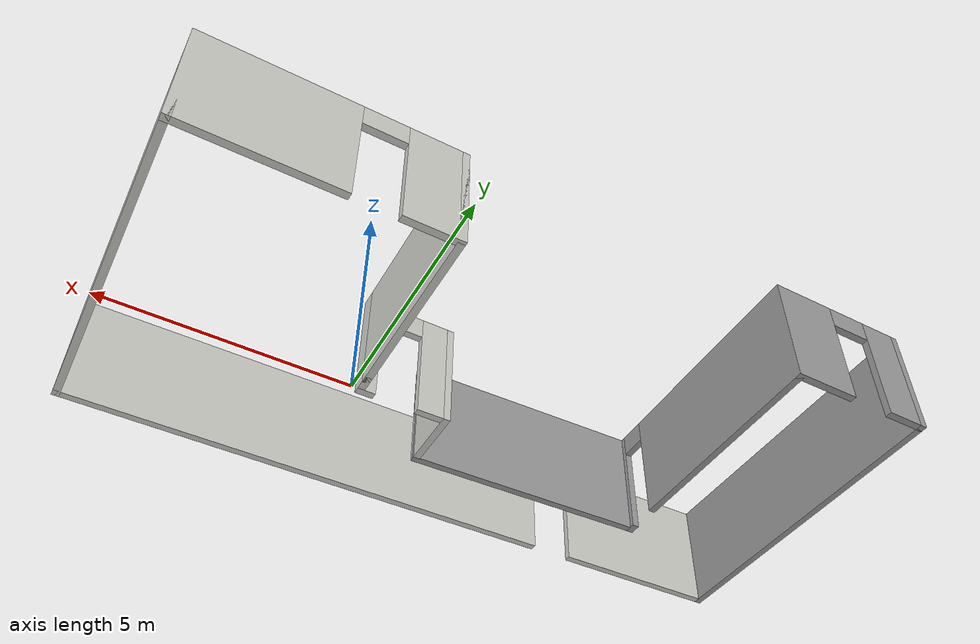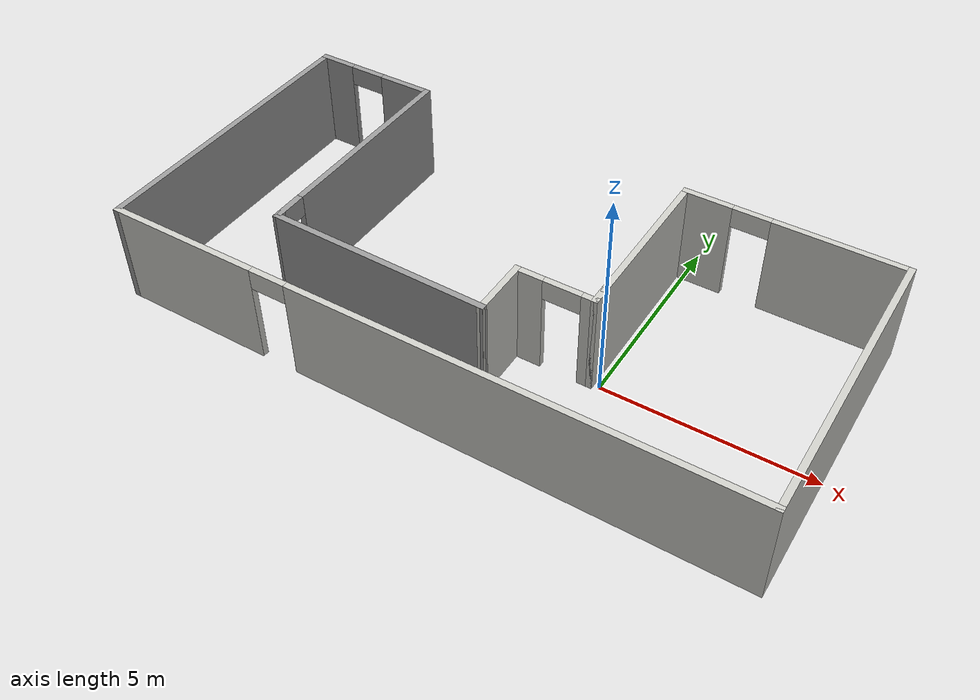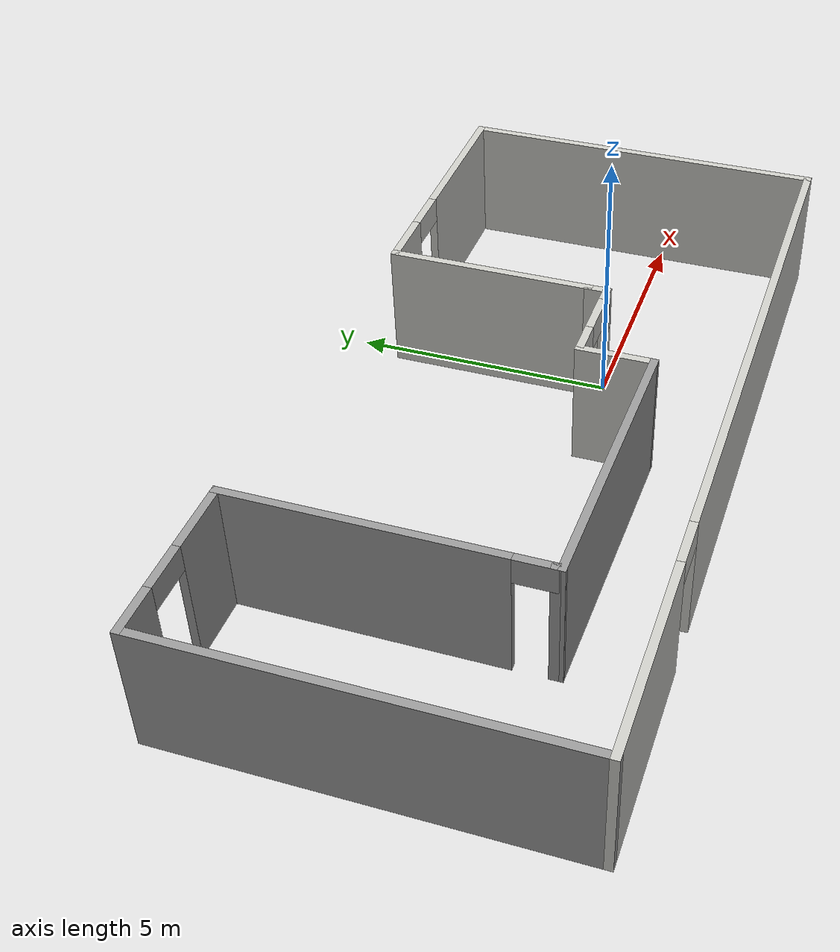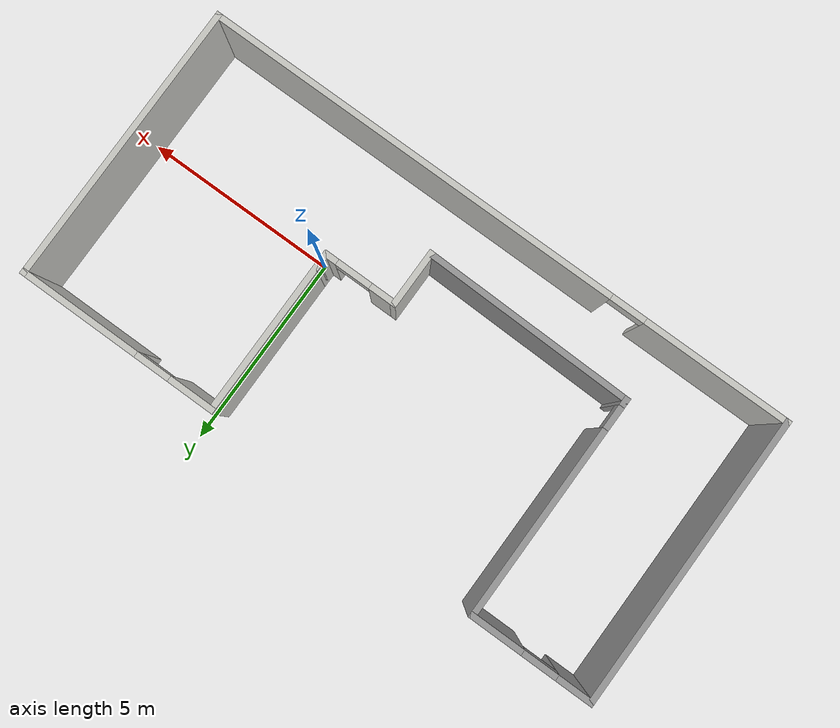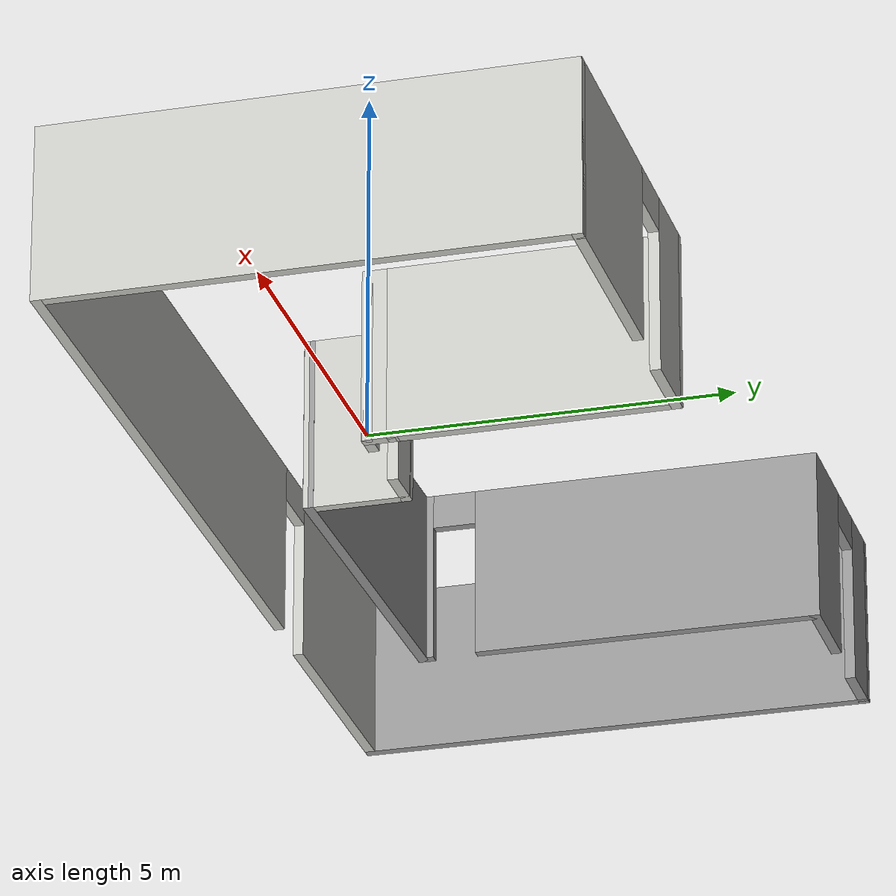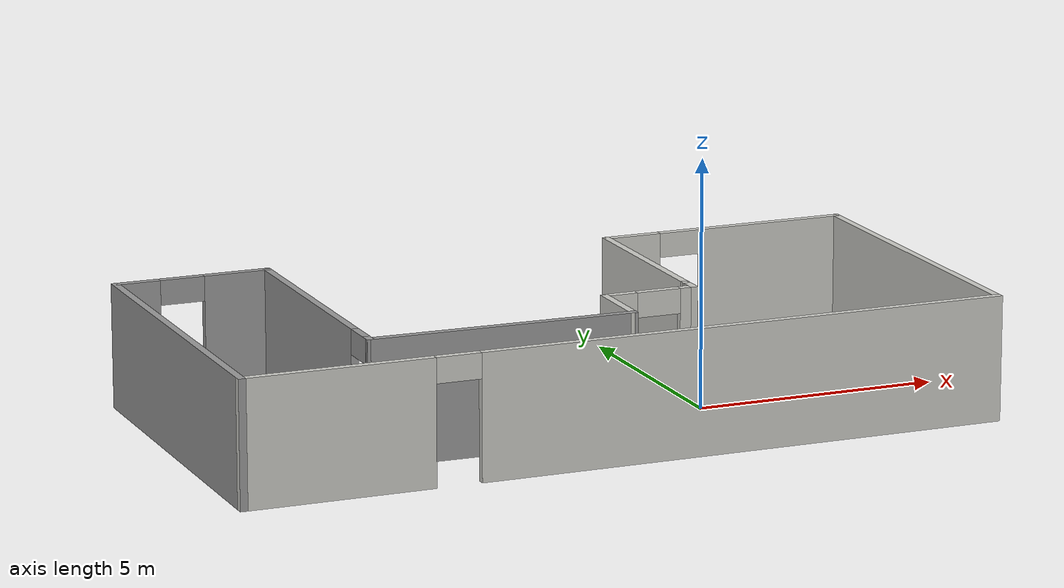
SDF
<?xml version='1.0'?>
<sdf version='1.7'>
  <model name='walls_and_doors'>
    <pose>-2.775 0.725 0 0 -0 0</pose>
    <link name='Wall_0'>
      <collision name='Wall_0_Collision'>
        <geometry>
          <box>
            <size>1.5 0.15 2.5</size>
          </box>
        </geometry>
        <pose>0 0 1.25 0 -0 0</pose>
      </collision>
      <visual name='Wall_0_Visual'>
        <pose>0 0 1.25 0 -0 0</pose>
        <geometry>
          <box>
            <size>1.5 0.15 2.5</size>
          </box>
        </geometry>
        <material>
          <script>
            <uri>file://media/materials/scripts/gazebo.material</uri>
            <name>Gazebo/CeilingTiled</name>
          </script>
          <ambient>1 1 1 1</ambient>
        </material>
        <meta>
          <layer>0</layer>
        </meta>
      </visual>
      <pose>0.725 -1.45 0 0 -0 1.5708</pose>
    </link>
    <link name='Wall_1'>
      <pose>1.65 -0.775 0 0 -0 0</pose>
      <visual name='Wall_1_Visual_0'>
        <pose>-0.637296 0 1.25 0 -0 0</pose>
        <geometry>
          <box>
            <size>0.725409 0.15 2.5</size>
          </box>
        </geometry>
        <material>
          <script>
            <uri>file://media/materials/scripts/gazebo.material</uri>
            <name>Gazebo/CeilingTiled</name>
          </script>
          <ambient>1 1 1 1</ambient>
        </material>
        <meta>
          <layer>0</layer>
        </meta>
      </visual>
      <collision name='Wall_1_Collision_0'>
        <geometry>
          <box>
            <size>0.725409 0.15 2.5</size>
          </box>
        </geometry>
        <pose>-0.637296 0 1.25 0 -0 0</pose>
      </collision>
      <visual name='Wall_1_Visual_1'>
        <pose>0.812704 0 1.25 0 -0 0</pose>
        <geometry>
          <box>
            <size>0.374591 0.15 2.5</size>
          </box>
        </geometry>
        <material>
          <script>
            <uri>file://media/materials/scripts/gazebo.material</uri>
            <name>Gazebo/CeilingTiled</name>
          </script>
          <ambient>1 1 1 1</ambient>
        </material>
        <meta>
          <layer>0</layer>
        </meta>
      </visual>
      <collision name='Wall_1_Collision_1'>
        <geometry>
          <box>
            <size>0.374591 0.15 2.5</size>
          </box>
        </geometry>
        <pose>0.812704 0 1.25 0 -0 0</pose>
      </collision>
      <visual name='Wall_1_Visual_2'>
        <pose>0.175409 0 2.25 0 -0 0</pose>
        <geometry>
          <box>
            <size>0.9 0.15 0.5</size>
          </box>
        </geometry>
        <material>
          <script>
            <uri>file://media/materials/scripts/gazebo.material</uri>
            <name>Gazebo/CeilingTiled</name>
          </script>
          <ambient>1 1 1 1</ambient>
        </material>
        <meta>
          <layer>0</layer>
        </meta>
      </visual>
      <collision name='Wall_1_Collision_2'>
        <geometry>
          <box>
            <size>0.9 0.15 0.5</size>
          </box>
        </geometry>
        <pose>0.175409 0 2.25 0 -0 0</pose>
      </collision>
    </link>
    <link name='Wall_10'>
      <pose>-6.125 3.675 0 0 -0 0</pose>
      <visual name='Wall_10_Visual_0'>
        <pose>-1.14543 0 1.25 0 -0 0</pose>
        <geometry>
          <box>
            <size>0.959147 0.15 2.5</size>
          </box>
        </geometry>
        <material>
          <script>
            <uri>file://media/materials/scripts/gazebo.material</uri>
            <name>Gazebo/Grey</name>
          </script>
          <ambient>1 1 1 1</ambient>
        </material>
        <meta>
          <layer>0</layer>
        </meta>
      </visual>
      <collision name='Wall_10_Collision_0'>
        <geometry>
          <box>
            <size>0.959147 0.15 2.5</size>
          </box>
        </geometry>
        <pose>-1.14543 0 1.25 0 -0 0</pose>
      </collision>
      <visual name='Wall_10_Visual_1'>
        <pose>0.929574 0 1.25 0 -0 0</pose>
        <geometry>
          <box>
            <size>1.39085 0.15 2.5</size>
          </box>
        </geometry>
        <material>
          <script>
            <uri>file://media/materials/scripts/gazebo.material</uri>
            <name>Gazebo/Grey</name>
          </script>
          <ambient>1 1 1 1</ambient>
        </material>
        <meta>
          <layer>0</layer>
        </meta>
      </visual>
      <collision name='Wall_10_Collision_1'>
        <geometry>
          <box>
            <size>1.39085 0.15 2.5</size>
          </box>
        </geometry>
        <pose>0.929574 0 1.25 0 -0 0</pose>
      </collision>
      <visual name='Wall_10_Visual_2'>
        <pose>-0.215853 0 2.25 0 -0 0</pose>
        <geometry>
          <box>
            <size>0.9 0.15 0.5</size>
          </box>
        </geometry>
        <material>
          <script>
            <uri>file://media/materials/scripts/gazebo.material</uri>
            <name>Gazebo/Grey</name>
          </script>
          <ambient>1 1 1 1</ambient>
        </material>
        <meta>
          <layer>0</layer>
        </meta>
      </visual>
      <collision name='Wall_10_Collision_2'>
        <geometry>
          <box>
            <size>0.9 0.15 0.5</size>
          </box>
        </geometry>
        <pose>-0.215853 0 2.25 0 -0 0</pose>
      </collision>
    </link>
    <link name='Wall_11'>
      <pose>-4.575 0.875 0 0 -0 -1.5708</pose>
      <visual name='Wall_11_Visual_0'>
        <pose>-0.379798 0 1.25 0 -0 0</pose>
        <geometry>
          <box>
            <size>4.9904 0.15 2.5</size>
          </box>
        </geometry>
        <material>
          <script>
            <uri>file://media/materials/scripts/gazebo.material</uri>
            <name>Gazebo/Grey</name>
          </script>
          <ambient>1 1 1 1</ambient>
        </material>
        <meta>
          <layer>0</layer>
        </meta>
      </visual>
      <collision name='Wall_11_Collision_0'>
        <geometry>
          <box>
            <size>4.9904 0.15 2.5</size>
          </box>
        </geometry>
        <pose>-0.379798 0 1.25 0 -0 0</pose>
      </collision>
      <visual name='Wall_11_Visual_1'>
        <pose>2.4952 0 2.25 0 -0 0</pose>
        <geometry>
          <box>
            <size>0.759596 0.15 0.5</size>
          </box>
        </geometry>
        <material>
          <script>
            <uri>file://media/materials/scripts/gazebo.material</uri>
            <name>Gazebo/Grey</name>
          </script>
          <ambient>1 1 1 1</ambient>
        </material>
        <meta>
          <layer>0</layer>
        </meta>
      </visual>
      <collision name='Wall_11_Collision_1'>
        <geometry>
          <box>
            <size>0.759596 0.15 0.5</size>
          </box>
        </geometry>
        <pose>2.4952 0 2.25 0 -0 0</pose>
      </collision>
    </link>
    <link name='Wall_12'>
      <collision name='Wall_12_Collision'>
        <geometry>
          <box>
            <size>0.25 0.15 2.5</size>
          </box>
        </geometry>
        <pose>0 0 1.25 0 -0 0</pose>
      </collision>
      <visual name='Wall_12_Visual'>
        <pose>0 0 1.25 0 -0 0</pose>
        <geometry>
          <box>
            <size>0.25 0.15 2.5</size>
          </box>
        </geometry>
        <material>
          <script>
            <uri>file://media/materials/scripts/gazebo.material</uri>
            <name>Gazebo/Grey</name>
          </script>
          <ambient>1 1 1 1</ambient>
        </material>
        <meta>
          <layer>0</layer>
        </meta>
      </visual>
      <pose>-4.575 -1.975 0 0 -0 -1.5708</pose>
    </link>
    <link name='Wall_13'>
      <collision name='Wall_13_Collision'>
        <geometry>
          <box>
            <size>5.45094 0.15 2.5</size>
          </box>
        </geometry>
        <pose>0 0 1.25 0 -0 0</pose>
      </collision>
      <visual name='Wall_13_Visual'>
        <pose>0 0 1.25 0 -0 0</pose>
        <geometry>
          <box>
            <size>5.45094 0.15 2.5</size>
          </box>
        </geometry>
        <material>
          <script>
            <uri>file://media/materials/scripts/gazebo.material</uri>
            <name>Gazebo/Grey</name>
          </script>
          <ambient>1 1 1 1</ambient>
        </material>
        <meta>
          <layer>0</layer>
        </meta>
      </visual>
      <pose>-1.925 -2.075 0 0 -0 -0.018866</pose>
    </link>
    <link name='Wall_2'>
      <collision name='Wall_2_Collision'>
        <geometry>
          <box>
            <size>0.5 0.15 2.5</size>
          </box>
        </geometry>
        <pose>0 0 1.25 0 -0 0</pose>
      </collision>
      <visual name='Wall_2_Visual'>
        <pose>0 0 1.25 0 -0 0</pose>
        <geometry>
          <box>
            <size>0.5 0.15 2.5</size>
          </box>
        </geometry>
        <material>
          <script>
            <uri>file://media/materials/scripts/gazebo.material</uri>
            <name>Gazebo/CeilingTiled</name>
          </script>
          <ambient>1 1 1 1</ambient>
        </material>
        <meta>
          <layer>0</layer>
        </meta>
      </visual>
      <pose>2.575 -0.6 0 0 -0 1.5708</pose>
    </link>
    <link name='Wall_3'>
      <collision name='Wall_3_Collision'>
        <geometry>
          <box>
            <size>0.15 0.15 2.5</size>
          </box>
        </geometry>
        <pose>0 0 1.25 0 -0 0</pose>
      </collision>
      <visual name='Wall_3_Visual'>
        <pose>0 0 1.25 0 -0 0</pose>
        <geometry>
          <box>
            <size>0.15 0.15 2.5</size>
          </box>
        </geometry>
        <material>
          <script>
            <uri>file://media/materials/scripts/gazebo.material</uri>
            <name>Gazebo/CeilingTiled</name>
          </script>
          <ambient>1 1 1 1</ambient>
        </material>
        <meta>
          <layer>0</layer>
        </meta>
      </visual>
      <pose>2.575 -0.425 0 0 -0 0</pose>
    </link>
    <link name='Wall_5'>
      <collision name='Wall_5_Collision'>
        <geometry>
          <box>
            <size>4 0.15 2.5</size>
          </box>
        </geometry>
        <pose>0 0 1.25 0 -0 0</pose>
      </collision>
      <visual name='Wall_5_Visual'>
        <pose>0 0 1.25 0 -0 0</pose>
        <geometry>
          <box>
            <size>4 0.15 2.5</size>
          </box>
        </geometry>
        <material>
          <script>
            <uri>file://media/materials/scripts/gazebo.material</uri>
            <name>Gazebo/CeilingTiled</name>
          </script>
          <ambient>1 1 1 1</ambient>
        </material>
        <meta>
          <layer>0</layer>
        </meta>
      </visual>
      <pose>2.575 1.5 0 0 -0 1.5708</pose>
    </link>
    <link name='Wall_6'>
      <pose>5.125 3.425 0 0 -0 0</pose>
      <visual name='Wall_6_Visual_0'>
        <pose>-2.01689 0 1.25 0 -0 0</pose>
        <geometry>
          <box>
            <size>1.21623 0.15 2.5</size>
          </box>
        </geometry>
        <material>
          <script>
            <uri>file://media/materials/scripts/gazebo.material</uri>
            <name>Gazebo/CeilingTiled</name>
          </script>
          <ambient>1 1 1 1</ambient>
        </material>
        <meta>
          <layer>0</layer>
        </meta>
      </visual>
      <collision name='Wall_6_Collision_0'>
        <geometry>
          <box>
            <size>1.21623 0.15 2.5</size>
          </box>
        </geometry>
        <pose>-2.01689 0 1.25 0 -0 0</pose>
      </collision>
      <visual name='Wall_6_Visual_1'>
        <pose>1.05811 0 1.25 0 -0 0</pose>
        <geometry>
          <box>
            <size>3.13377 0.15 2.5</size>
          </box>
        </geometry>
        <material>
          <script>
            <uri>file://media/materials/scripts/gazebo.material</uri>
            <name>Gazebo/CeilingTiled</name>
          </script>
          <ambient>1 1 1 1</ambient>
        </material>
        <meta>
          <layer>0</layer>
        </meta>
      </visual>
      <collision name='Wall_6_Collision_1'>
        <geometry>
          <box>
            <size>3.13377 0.15 2.5</size>
          </box>
        </geometry>
        <pose>1.05811 0 1.25 0 -0 0</pose>
      </collision>
      <visual name='Wall_6_Visual_2'>
        <pose>-0.958774 0 2.25 0 -0 0</pose>
        <geometry>
          <box>
            <size>0.9 0.15 0.5</size>
          </box>
        </geometry>
        <material>
          <script>
            <uri>file://media/materials/scripts/gazebo.material</uri>
            <name>Gazebo/CeilingTiled</name>
          </script>
          <ambient>1 1 1 1</ambient>
        </material>
        <meta>
          <layer>0</layer>
        </meta>
      </visual>
      <collision name='Wall_6_Collision_2'>
        <geometry>
          <box>
            <size>0.9 0.15 0.5</size>
          </box>
        </geometry>
        <pose>-0.958774 0 2.25 0 -0 0</pose>
      </collision>
    </link>
    <link name='Wall_7'>
      <collision name='Wall_7_Collision'>
        <geometry>
          <box>
            <size>7.25 0.15 2.5</size>
          </box>
        </geometry>
        <pose>0 0 1.25 0 -0 0</pose>
      </collision>
      <visual name='Wall_7_Visual'>
        <pose>0 0 1.25 0 -0 0</pose>
        <geometry>
          <box>
            <size>7.25 0.15 2.5</size>
          </box>
        </geometry>
        <material>
          <script>
            <uri>file://media/materials/scripts/gazebo.material</uri>
            <name>Gazebo/CeilingTiled</name>
          </script>
          <ambient>1 1 1 1</ambient>
        </material>
        <meta>
          <layer>0</layer>
        </meta>
      </visual>
      <pose>7.675 -0.125 0 0 -0 -1.5708</pose>
    </link>
    <link name='Wall_8'>
      <pose>0 -3.675 0 0 -0 3.14159</pose>
      <visual name='Wall_8_Visual_0'>
        <pose>-2.36598 0 1.25 0 -0 0</pose>
        <geometry>
          <box>
            <size>10.768 0.15 2.5</size>
          </box>
        </geometry>
        <material>
          <script>
            <uri>file://media/materials/scripts/gazebo.material</uri>
            <name>Gazebo/CeilingTiled</name>
          </script>
          <ambient>1 1 1 1</ambient>
        </material>
        <meta>
          <layer>0</layer>
        </meta>
      </visual>
      <collision name='Wall_8_Collision_0'>
        <geometry>
          <box>
            <size>10.768 0.15 2.5</size>
          </box>
        </geometry>
        <pose>-2.36598 0 1.25 0 -0 0</pose>
      </collision>
      <visual name='Wall_8_Visual_1'>
        <pose>5.83401 0 1.25 0 -0 0</pose>
        <geometry>
          <box>
            <size>3.83197 0.15 2.5</size>
          </box>
        </geometry>
        <material>
          <script>
            <uri>file://media/materials/scripts/gazebo.material</uri>
            <name>Gazebo/CeilingTiled</name>
          </script>
          <ambient>1 1 1 1</ambient>
        </material>
        <meta>
          <layer>0</layer>
        </meta>
      </visual>
      <collision name='Wall_8_Collision_1'>
        <geometry>
          <box>
            <size>3.83197 0.15 2.5</size>
          </box>
        </geometry>
        <pose>5.83401 0 1.25 0 -0 0</pose>
      </collision>
      <visual name='Wall_8_Visual_2'>
        <pose>3.46803 0 2.25 0 -0 0</pose>
        <geometry>
          <box>
            <size>0.9 0.15 0.5</size>
          </box>
        </geometry>
        <material>
          <script>
            <uri>file://media/materials/scripts/gazebo.material</uri>
            <name>Gazebo/CeilingTiled</name>
          </script>
          <ambient>1 1 1 1</ambient>
        </material>
        <meta>
          <layer>0</layer>
        </meta>
      </visual>
      <collision name='Wall_8_Collision_2'>
        <geometry>
          <box>
            <size>0.9 0.15 0.5</size>
          </box>
        </geometry>
        <pose>3.46803 0 2.25 0 -0 0</pose>
      </collision>
    </link>
    <link name='Wall_9'>
      <collision name='Wall_9_Collision'>
        <geometry>
          <box>
            <size>7.5 0.15 2.5</size>
          </box>
        </geometry>
        <pose>0 0 1.25 0 -0 0</pose>
      </collision>
      <visual name='Wall_9_Visual'>
        <pose>0 0 1.25 0 -0 0</pose>
        <geometry>
          <box>
            <size>7.5 0.15 2.5</size>
          </box>
        </geometry>
        <material>
          <script>
            <uri>file://media/materials/scripts/gazebo.material</uri>
            <name>Gazebo/Grey</name>
          </script>
          <ambient>1 1 1 1</ambient>
        </material>
        <meta>
          <layer>0</layer>
        </meta>
      </visual>
      <pose>-7.675 0 0 0 -0 1.5708</pose>
    </link>
    <static>1</static>
  </model>

</sdf>
